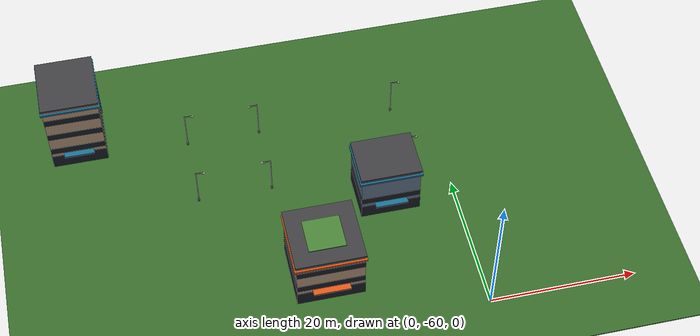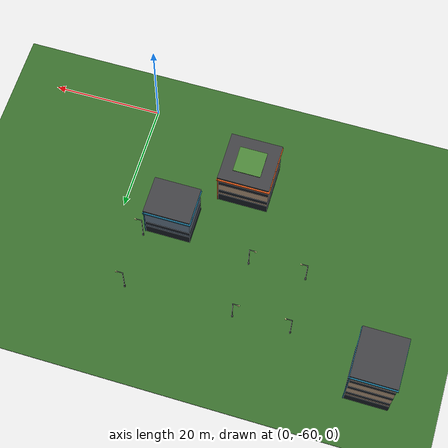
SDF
<sdf version="1.9">
 <world name="city">
  <model name="ground">
   <static>true</static>
   <link name="link">
    <collision name="collision">
     <pose>0 0 -0.1 0 0 0</pose>
     <geometry><box><size>220 220 0.2</size></box></geometry>
     <surface><friction><ode><mu>1.0</mu><mu2>1.0</mu2></ode></friction></surface>
    </collision>
    <visual name="visual">
     <pose>0 0 -0.1 0 0 0</pose>
     <geometry><box><size>220 220 0.2</size></box></geometry>
     <material>
      <ambient>0.17 0.33 0.13 1</ambient>
      <diffuse>0.21 0.41 0.16 1</diffuse>
      <specular>0.05 0.06 0.04 1</specular>
     </material>
    </visual>
   </link>
  </model>
  <model name="building_0">
   <static>true</static>
   <pose>-50.5 -20.5 0 0 0 0</pose>
   <link name="link">
    <collision name="collision">
     <pose>0 0 5.85 0 0 0</pose>
     <geometry><box><size>7.645 8.607 11.7</size></box></geometry>
    </collision>
    <visual name="body">
     <pose>0 0 5.85 0 0 0</pose>
     <geometry><box><size>7.645 8.607 11.7</size></box></geometry>
     <material>
      <ambient>0.74 0.63 0.52 1</ambient>
      <diffuse>0.74 0.63 0.52 1</diffuse>
      <specular>0.16 0.16 0.18 1</specular>
      <pbr><metal><roughness>0.62</roughness><metalness>0.08</metalness></metal></pbr>
     </material>
    </visual>
    <visual name="podium">
     <pose>0 0 1.1 0 0 0</pose>
     <geometry><box><size>7.745 8.707 2.2</size></box></geometry>
     <material>
      <ambient>0.07 0.09 0.11 1</ambient>
      <diffuse>0.1 0.13 0.16 1</diffuse>
      <specular>0.45 0.47 0.5 1</specular>
      <pbr><metal><roughness>0.22</roughness><metalness>0.4</metalness></metal></pbr>
     </material>
    </visual>
    <visual name="canopy">
     <pose>0 -4.704 2.55 0 0 0</pose>
     <geometry><box><size>4.205 0.90 0.18</size></box></geometry>
     <material>
      <ambient>0.1 0.42 0.55 1</ambient>
      <diffuse>0.1 0.42 0.55 1</diffuse>
      <specular>0.25 0.25 0.25 1</specular>
      <pbr><metal><roughness>0.45</roughness><metalness>0</metalness></metal></pbr>
     </material>
    </visual>
    <visual name="corner_column">
     <pose>3.863 4.344 5.85 0 0 0</pose>
     <geometry><box><size>0.16 0.16 11.7</size></box></geometry>
     <material>
      <ambient>0.1 0.42 0.55 1</ambient>
      <diffuse>0.1 0.42 0.55 1</diffuse>
      <specular>0.25 0.25 0.25 1</specular>
      <pbr><metal><roughness>0.45</roughness><metalness>0</metalness></metal></pbr>
     </material>
    </visual>
    <visual name="glass_0">
     <pose>0 0 3.3 0 0 0</pose>
     <geometry><box><size>7.705 8.667 1.05</size></box></geometry>
     <material>
      <ambient>0.075 0.095 0.115 1</ambient>
      <diffuse>0.1 0.13 0.16 1</diffuse>
      <specular>0.55 0.6 0.65 1</specular>
      <emissive>0.06 0.09 0.12 1</emissive>
      <pbr><metal><roughness>0.1</roughness><metalness>0.55</metalness></metal></pbr>
     </material>
    </visual>
    <visual name="glass_1">
     <pose>0 0 6.3 0 0 0</pose>
     <geometry><box><size>7.705 8.667 1.05</size></box></geometry>
     <material>
      <ambient>0.075 0.095 0.115 1</ambient>
      <diffuse>0.1 0.13 0.16 1</diffuse>
      <specular>0.55 0.6 0.65 1</specular>
      <emissive>0.06 0.09 0.12 1</emissive>
      <pbr><metal><roughness>0.1</roughness><metalness>0.55</metalness></metal></pbr>
     </material>
    </visual>
    <visual name="glass_2">
     <pose>0 0 9.3 0 0 0</pose>
     <geometry><box><size>7.705 8.667 1.05</size></box></geometry>
     <material>
      <ambient>0.075 0.095 0.115 1</ambient>
      <diffuse>0.1 0.13 0.16 1</diffuse>
      <specular>0.55 0.6 0.65 1</specular>
      <emissive>0.46 0.3 0.12 1</emissive>
      <pbr><metal><roughness>0.1</roughness><metalness>0.55</metalness></metal></pbr>
     </material>
    </visual>
    <visual name="cornice">
     <pose>0 0 11.15 0 0 0</pose>
     <geometry><box><size>8.145 9.107 0.30</size></box></geometry>
     <material>
      <ambient>0.1 0.42 0.55 1</ambient>
      <diffuse>0.1 0.42 0.55 1</diffuse>
      <specular>0.2 0.2 0.2 1</specular>
      <pbr><metal><roughness>0.55</roughness><metalness>0</metalness></metal></pbr>
     </material>
    </visual>
    <visual name="roof">
     <pose>0 0 11.85 0 0 0</pose>
     <geometry><box><size>7.945 8.907 0.30</size></box></geometry>
     <material>
      <ambient>0.24 0.24 0.25 1</ambient>
      <diffuse>0.24 0.24 0.25 1</diffuse>
      <specular>0.18 0.18 0.18 1</specular>
      <pbr><metal><roughness>0.85</roughness><metalness>0</metalness></metal></pbr>
     </material>
    </visual>
   </link>
  </model>
  <model name="building_6">
   <static>true</static>
   <pose>-20.5 -50.5 0 0 0 0</pose>
   <link name="link">
    <collision name="collision">
     <pose>0 0 4.027 0 0 0</pose>
     <geometry><box><size>9.156 9.011 8.054</size></box></geometry>
    </collision>
    <visual name="body">
     <pose>0 0 4.027 0 0 0</pose>
     <geometry><box><size>9.156 9.011 8.054</size></box></geometry>
     <material>
      <ambient>0.74 0.63 0.52 1</ambient>
      <diffuse>0.74 0.63 0.52 1</diffuse>
      <specular>0.16 0.16 0.18 1</specular>
      <pbr><metal><roughness>0.62</roughness><metalness>0.08</metalness></metal></pbr>
     </material>
    </visual>
    <visual name="podium">
     <pose>0 0 1.1 0 0 0</pose>
     <geometry><box><size>9.256 9.111 2.2</size></box></geometry>
     <material>
      <ambient>0.07 0.09 0.11 1</ambient>
      <diffuse>0.1 0.13 0.16 1</diffuse>
      <specular>0.45 0.47 0.5 1</specular>
      <pbr><metal><roughness>0.22</roughness><metalness>0.4</metalness></metal></pbr>
     </material>
    </visual>
    <visual name="canopy">
     <pose>0 -4.906 2.55 0 0 0</pose>
     <geometry><box><size>5.036 0.90 0.18</size></box></geometry>
     <material>
      <ambient>0.85 0.33 0.09 1</ambient>
      <diffuse>0.85 0.33 0.09 1</diffuse>
      <specular>0.25 0.25 0.25 1</specular>
      <pbr><metal><roughness>0.45</roughness><metalness>0</metalness></metal></pbr>
     </material>
    </visual>
    <visual name="corner_column">
     <pose>4.618 4.546 4.027 0 0 0</pose>
     <geometry><box><size>0.16 0.16 8.054</size></box></geometry>
     <material>
      <ambient>0.85 0.33 0.09 1</ambient>
      <diffuse>0.85 0.33 0.09 1</diffuse>
      <specular>0.25 0.25 0.25 1</specular>
      <pbr><metal><roughness>0.45</roughness><metalness>0</metalness></metal></pbr>
     </material>
    </visual>
    <visual name="glass_0">
     <pose>0 0 3.3 0 0 0</pose>
     <geometry><box><size>9.216 9.071 1.05</size></box></geometry>
     <material>
      <ambient>0.075 0.095 0.115 1</ambient>
      <diffuse>0.1 0.13 0.16 1</diffuse>
      <specular>0.55 0.6 0.65 1</specular>
      <emissive>0.06 0.09 0.12 1</emissive>
      <pbr><metal><roughness>0.1</roughness><metalness>0.55</metalness></metal></pbr>
     </material>
    </visual>
    <visual name="glass_1">
     <pose>0 0 6.3 0 0 0</pose>
     <geometry><box><size>9.216 9.071 1.05</size></box></geometry>
     <material>
      <ambient>0.075 0.095 0.115 1</ambient>
      <diffuse>0.1 0.13 0.16 1</diffuse>
      <specular>0.55 0.6 0.65 1</specular>
      <emissive>0.46 0.3 0.12 1</emissive>
      <pbr><metal><roughness>0.1</roughness><metalness>0.55</metalness></metal></pbr>
     </material>
    </visual>
    <visual name="cornice">
     <pose>0 0 7.504 0 0 0</pose>
     <geometry><box><size>9.656 9.511 0.30</size></box></geometry>
     <material>
      <ambient>0.85 0.33 0.09 1</ambient>
      <diffuse>0.85 0.33 0.09 1</diffuse>
      <specular>0.2 0.2 0.2 1</specular>
      <pbr><metal><roughness>0.55</roughness><metalness>0</metalness></metal></pbr>
     </material>
    </visual>
    <visual name="roof">
     <pose>0 0 8.204 0 0 0</pose>
     <geometry><box><size>9.456 9.311 0.30</size></box></geometry>
     <material>
      <ambient>0.24 0.24 0.25 1</ambient>
      <diffuse>0.24 0.24 0.25 1</diffuse>
      <specular>0.18 0.18 0.18 1</specular>
      <pbr><metal><roughness>0.85</roughness><metalness>0</metalness></metal></pbr>
     </material>
    </visual>
    <visual name="roof_garden">
     <pose>0 0 8.394 0 0 0</pose>
     <geometry><box><size>5.036 4.956 0.16</size></box></geometry>
     <material>
      <ambient>0.24 0.44 0.18 1</ambient>
      <diffuse>0.28 0.5 0.21 1</diffuse>
      <specular>0.05 0.06 0.04 1</specular>
     </material>
    </visual>
   </link>
  </model>
  <model name="building_7">
   <static>true</static>
   <pose>-9.5 -39.5 0 0 0 0</pose>
   <link name="link">
    <collision name="collision">
     <pose>0 0 3.879 0 0 0</pose>
     <geometry><box><size>8.21 6.666 7.757</size></box></geometry>
    </collision>
    <visual name="body">
     <pose>0 0 3.879 0 0 0</pose>
     <geometry><box><size>8.21 6.666 7.757</size></box></geometry>
     <material>
      <ambient>0.42 0.5 0.58 1</ambient>
      <diffuse>0.42 0.5 0.58 1</diffuse>
      <specular>0.16 0.16 0.18 1</specular>
      <pbr><metal><roughness>0.62</roughness><metalness>0.08</metalness></metal></pbr>
     </material>
    </visual>
    <visual name="podium">
     <pose>0 0 1.1 0 0 0</pose>
     <geometry><box><size>8.31 6.766 2.2</size></box></geometry>
     <material>
      <ambient>0.07 0.09 0.11 1</ambient>
      <diffuse>0.1 0.13 0.16 1</diffuse>
      <specular>0.45 0.47 0.5 1</specular>
      <pbr><metal><roughness>0.22</roughness><metalness>0.4</metalness></metal></pbr>
     </material>
    </visual>
    <visual name="canopy">
     <pose>0 -3.733 2.55 0 0 0</pose>
     <geometry><box><size>4.516 0.90 0.18</size></box></geometry>
     <material>
      <ambient>0.1 0.42 0.55 1</ambient>
      <diffuse>0.1 0.42 0.55 1</diffuse>
      <specular>0.25 0.25 0.25 1</specular>
      <pbr><metal><roughness>0.45</roughness><metalness>0</metalness></metal></pbr>
     </material>
    </visual>
    <visual name="corner_column">
     <pose>4.145 3.373 3.879 0 0 0</pose>
     <geometry><box><size>0.16 0.16 7.757</size></box></geometry>
     <material>
      <ambient>0.1 0.42 0.55 1</ambient>
      <diffuse>0.1 0.42 0.55 1</diffuse>
      <specular>0.25 0.25 0.25 1</specular>
      <pbr><metal><roughness>0.45</roughness><metalness>0</metalness></metal></pbr>
     </material>
    </visual>
    <visual name="glass_0">
     <pose>0 0 3.3 0 0 0</pose>
     <geometry><box><size>8.27 6.726 1.05</size></box></geometry>
     <material>
      <ambient>0.075 0.095 0.115 1</ambient>
      <diffuse>0.1 0.13 0.16 1</diffuse>
      <specular>0.55 0.6 0.65 1</specular>
      <emissive>0.06 0.09 0.12 1</emissive>
      <pbr><metal><roughness>0.1</roughness><metalness>0.55</metalness></metal></pbr>
     </material>
    </visual>
    <visual name="cornice">
     <pose>0 0 7.207 0 0 0</pose>
     <geometry><box><size>8.71 7.166 0.30</size></box></geometry>
     <material>
      <ambient>0.1 0.42 0.55 1</ambient>
      <diffuse>0.1 0.42 0.55 1</diffuse>
      <specular>0.2 0.2 0.2 1</specular>
      <pbr><metal><roughness>0.55</roughness><metalness>0</metalness></metal></pbr>
     </material>
    </visual>
    <visual name="roof">
     <pose>0 0 7.907 0 0 0</pose>
     <geometry><box><size>8.51 6.966 0.30</size></box></geometry>
     <material>
      <ambient>0.24 0.24 0.25 1</ambient>
      <diffuse>0.24 0.24 0.25 1</diffuse>
      <specular>0.18 0.18 0.18 1</specular>
      <pbr><metal><roughness>0.85</roughness><metalness>0</metalness></metal></pbr>
     </material>
    </visual>
   </link>
  </model>
  <model name="streetlight_0">
   <static>true</static>
   <pose>-35.2 -35.2 0 0 0 0</pose>
   <link name="link">
    <visual name="foundation">
     <pose>0 0 0.15 0 0 0</pose>
     <geometry><cylinder><radius>0.18</radius><length>0.3</length></cylinder></geometry>
     <material>
      <ambient>0.17 0.18 0.19 1</ambient>
      <diffuse>0.17 0.18 0.19 1</diffuse>
      <specular>0.3 0.3 0.32 1</specular>
      <pbr><metal><roughness>0.45</roughness><metalness>0.35</metalness></metal></pbr>
     </material>
    </visual>
    <visual name="pole">
     <pose>0 0 3.0 0 0 0</pose>
     <geometry><cylinder><radius>0.075</radius><length>6</length></cylinder></geometry>
     <material>
      <ambient>0.17 0.18 0.19 1</ambient>
      <diffuse>0.17 0.18 0.19 1</diffuse>
      <specular>0.3 0.3 0.32 1</specular>
      <pbr><metal><roughness>0.45</roughness><metalness>0.35</metalness></metal></pbr>
     </material>
    </visual>
    <visual name="arm">
     <pose>0.55 0 5.95 0 0 0</pose>
     <geometry><box><size>1.10 0.09 0.09</size></box></geometry>
     <material>
      <ambient>0.17 0.18 0.19 1</ambient>
      <diffuse>0.17 0.18 0.19 1</diffuse>
      <specular>0.3 0.3 0.32 1</specular>
      <pbr><metal><roughness>0.45</roughness><metalness>0.35</metalness></metal></pbr>
     </material>
    </visual>
    <visual name="head">
     <pose>1.05 0 5.83 0 0 0</pose>
     <geometry><box><size>0.42 0.20 0.10</size></box></geometry>
     <material>
      <ambient>1 0.9 0.62 1</ambient>
      <diffuse>1 0.9 0.62 1</diffuse>
      <specular>0.4 0.4 0.4 1</specular>
      <emissive>1 0.78 0.42 1</emissive>
     </material>
    </visual>
   </link>
  </model>
  <model name="streetlight_1">
   <static>true</static>
   <pose>-35.2 -24.8 0 0 0 0</pose>
   <link name="link">
    <visual name="foundation">
     <pose>0 0 0.15 0 0 0</pose>
     <geometry><cylinder><radius>0.18</radius><length>0.3</length></cylinder></geometry>
     <material>
      <ambient>0.17 0.18 0.19 1</ambient>
      <diffuse>0.17 0.18 0.19 1</diffuse>
      <specular>0.3 0.3 0.32 1</specular>
      <pbr><metal><roughness>0.45</roughness><metalness>0.35</metalness></metal></pbr>
     </material>
    </visual>
    <visual name="pole">
     <pose>0 0 3.0 0 0 0</pose>
     <geometry><cylinder><radius>0.075</radius><length>6</length></cylinder></geometry>
     <material>
      <ambient>0.17 0.18 0.19 1</ambient>
      <diffuse>0.17 0.18 0.19 1</diffuse>
      <specular>0.3 0.3 0.32 1</specular>
      <pbr><metal><roughness>0.45</roughness><metalness>0.35</metalness></metal></pbr>
     </material>
    </visual>
    <visual name="arm">
     <pose>0.55 0 5.95 0 0 0</pose>
     <geometry><box><size>1.10 0.09 0.09</size></box></geometry>
     <material>
      <ambient>0.17 0.18 0.19 1</ambient>
      <diffuse>0.17 0.18 0.19 1</diffuse>
      <specular>0.3 0.3 0.32 1</specular>
      <pbr><metal><roughness>0.45</roughness><metalness>0.35</metalness></metal></pbr>
     </material>
    </visual>
    <visual name="head">
     <pose>1.05 0 5.83 0 0 0</pose>
     <geometry><box><size>0.42 0.20 0.10</size></box></geometry>
     <material>
      <ambient>1 0.9 0.62 1</ambient>
      <diffuse>1 0.9 0.62 1</diffuse>
      <specular>0.4 0.4 0.4 1</specular>
      <emissive>1 0.78 0.42 1</emissive>
     </material>
    </visual>
   </link>
  </model>
  <model name="streetlight_2">
   <static>true</static>
   <pose>-24.8 -35.2 0 0 0 3.142</pose>
   <link name="link">
    <visual name="foundation">
     <pose>0 0 0.15 0 0 0</pose>
     <geometry><cylinder><radius>0.18</radius><length>0.3</length></cylinder></geometry>
     <material>
      <ambient>0.17 0.18 0.19 1</ambient>
      <diffuse>0.17 0.18 0.19 1</diffuse>
      <specular>0.3 0.3 0.32 1</specular>
      <pbr><metal><roughness>0.45</roughness><metalness>0.35</metalness></metal></pbr>
     </material>
    </visual>
    <visual name="pole">
     <pose>0 0 3.0 0 0 0</pose>
     <geometry><cylinder><radius>0.075</radius><length>6</length></cylinder></geometry>
     <material>
      <ambient>0.17 0.18 0.19 1</ambient>
      <diffuse>0.17 0.18 0.19 1</diffuse>
      <specular>0.3 0.3 0.32 1</specular>
      <pbr><metal><roughness>0.45</roughness><metalness>0.35</metalness></metal></pbr>
     </material>
    </visual>
    <visual name="arm">
     <pose>0.55 0 5.95 0 0 0</pose>
     <geometry><box><size>1.10 0.09 0.09</size></box></geometry>
     <material>
      <ambient>0.17 0.18 0.19 1</ambient>
      <diffuse>0.17 0.18 0.19 1</diffuse>
      <specular>0.3 0.3 0.32 1</specular>
      <pbr><metal><roughness>0.45</roughness><metalness>0.35</metalness></metal></pbr>
     </material>
    </visual>
    <visual name="head">
     <pose>1.05 0 5.83 0 0 0</pose>
     <geometry><box><size>0.42 0.20 0.10</size></box></geometry>
     <material>
      <ambient>1 0.9 0.62 1</ambient>
      <diffuse>1 0.9 0.62 1</diffuse>
      <specular>0.4 0.4 0.4 1</specular>
      <emissive>1 0.78 0.42 1</emissive>
     </material>
    </visual>
   </link>
  </model>
  <model name="streetlight_3">
   <static>true</static>
   <pose>-24.8 -24.8 0 0 0 3.142</pose>
   <link name="link">
    <visual name="foundation">
     <pose>0 0 0.15 0 0 0</pose>
     <geometry><cylinder><radius>0.18</radius><length>0.3</length></cylinder></geometry>
     <material>
      <ambient>0.17 0.18 0.19 1</ambient>
      <diffuse>0.17 0.18 0.19 1</diffuse>
      <specular>0.3 0.3 0.32 1</specular>
      <pbr><metal><roughness>0.45</roughness><metalness>0.35</metalness></metal></pbr>
     </material>
    </visual>
    <visual name="pole">
     <pose>0 0 3.0 0 0 0</pose>
     <geometry><cylinder><radius>0.075</radius><length>6</length></cylinder></geometry>
     <material>
      <ambient>0.17 0.18 0.19 1</ambient>
      <diffuse>0.17 0.18 0.19 1</diffuse>
      <specular>0.3 0.3 0.32 1</specular>
      <pbr><metal><roughness>0.45</roughness><metalness>0.35</metalness></metal></pbr>
     </material>
    </visual>
    <visual name="arm">
     <pose>0.55 0 5.95 0 0 0</pose>
     <geometry><box><size>1.10 0.09 0.09</size></box></geometry>
     <material>
      <ambient>0.17 0.18 0.19 1</ambient>
      <diffuse>0.17 0.18 0.19 1</diffuse>
      <specular>0.3 0.3 0.32 1</specular>
      <pbr><metal><roughness>0.45</roughness><metalness>0.35</metalness></metal></pbr>
     </material>
    </visual>
    <visual name="head">
     <pose>1.05 0 5.83 0 0 0</pose>
     <geometry><box><size>0.42 0.20 0.10</size></box></geometry>
     <material>
      <ambient>1 0.9 0.62 1</ambient>
      <diffuse>1 0.9 0.62 1</diffuse>
      <specular>0.4 0.4 0.4 1</specular>
      <emissive>1 0.78 0.42 1</emissive>
     </material>
    </visual>
   </link>
  </model>
  <model name="streetlight_12">
   <static>true</static>
   <pose>-5.2 -35.2 0 0 0 0</pose>
   <link name="link">
    <visual name="foundation">
     <pose>0 0 0.15 0 0 0</pose>
     <geometry><cylinder><radius>0.18</radius><length>0.3</length></cylinder></geometry>
     <material>
      <ambient>0.17 0.18 0.19 1</ambient>
      <diffuse>0.17 0.18 0.19 1</diffuse>
      <specular>0.3 0.3 0.32 1</specular>
      <pbr><metal><roughness>0.45</roughness><metalness>0.35</metalness></metal></pbr>
     </material>
    </visual>
    <visual name="pole">
     <pose>0 0 3.0 0 0 0</pose>
     <geometry><cylinder><radius>0.075</radius><length>6</length></cylinder></geometry>
     <material>
      <ambient>0.17 0.18 0.19 1</ambient>
      <diffuse>0.17 0.18 0.19 1</diffuse>
      <specular>0.3 0.3 0.32 1</specular>
      <pbr><metal><roughness>0.45</roughness><metalness>0.35</metalness></metal></pbr>
     </material>
    </visual>
    <visual name="arm">
     <pose>0.55 0 5.95 0 0 0</pose>
     <geometry><box><size>1.10 0.09 0.09</size></box></geometry>
     <material>
      <ambient>0.17 0.18 0.19 1</ambient>
      <diffuse>0.17 0.18 0.19 1</diffuse>
      <specular>0.3 0.3 0.32 1</specular>
      <pbr><metal><roughness>0.45</roughness><metalness>0.35</metalness></metal></pbr>
     </material>
    </visual>
    <visual name="head">
     <pose>1.05 0 5.83 0 0 0</pose>
     <geometry><box><size>0.42 0.20 0.10</size></box></geometry>
     <material>
      <ambient>1 0.9 0.62 1</ambient>
      <diffuse>1 0.9 0.62 1</diffuse>
      <specular>0.4 0.4 0.4 1</specular>
      <emissive>1 0.78 0.42 1</emissive>
     </material>
    </visual>
   </link>
  </model>
  <model name="streetlight_13">
   <static>true</static>
   <pose>-5.2 -24.8 0 0 0 0</pose>
   <link name="link">
    <visual name="foundation">
     <pose>0 0 0.15 0 0 0</pose>
     <geometry><cylinder><radius>0.18</radius><length>0.3</length></cylinder></geometry>
     <material>
      <ambient>0.17 0.18 0.19 1</ambient>
      <diffuse>0.17 0.18 0.19 1</diffuse>
      <specular>0.3 0.3 0.32 1</specular>
      <pbr><metal><roughness>0.45</roughness><metalness>0.35</metalness></metal></pbr>
     </material>
    </visual>
    <visual name="pole">
     <pose>0 0 3.0 0 0 0</pose>
     <geometry><cylinder><radius>0.075</radius><length>6</length></cylinder></geometry>
     <material>
      <ambient>0.17 0.18 0.19 1</ambient>
      <diffuse>0.17 0.18 0.19 1</diffuse>
      <specular>0.3 0.3 0.32 1</specular>
      <pbr><metal><roughness>0.45</roughness><metalness>0.35</metalness></metal></pbr>
     </material>
    </visual>
    <visual name="arm">
     <pose>0.55 0 5.95 0 0 0</pose>
     <geometry><box><size>1.10 0.09 0.09</size></box></geometry>
     <material>
      <ambient>0.17 0.18 0.19 1</ambient>
      <diffuse>0.17 0.18 0.19 1</diffuse>
      <specular>0.3 0.3 0.32 1</specular>
      <pbr><metal><roughness>0.45</roughness><metalness>0.35</metalness></metal></pbr>
     </material>
    </visual>
    <visual name="head">
     <pose>1.05 0 5.83 0 0 0</pose>
     <geometry><box><size>0.42 0.20 0.10</size></box></geometry>
     <material>
      <ambient>1 0.9 0.62 1</ambient>
      <diffuse>1 0.9 0.62 1</diffuse>
      <specular>0.4 0.4 0.4 1</specular>
      <emissive>1 0.78 0.42 1</emissive>
     </material>
    </visual>
   </link>
  </model>
 </world>
</sdf>
